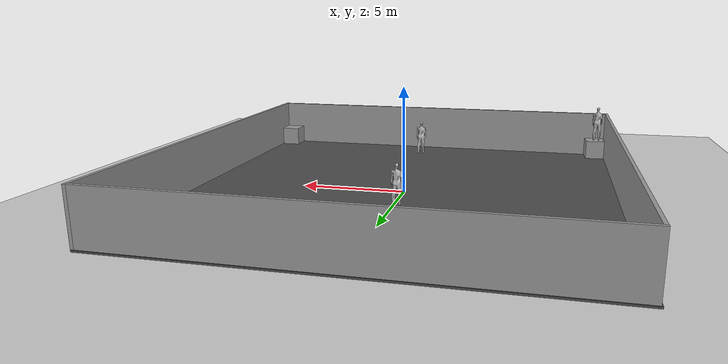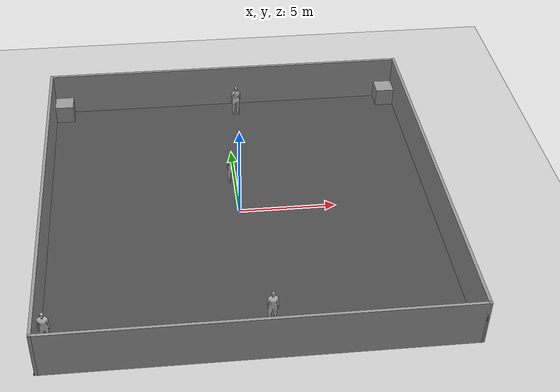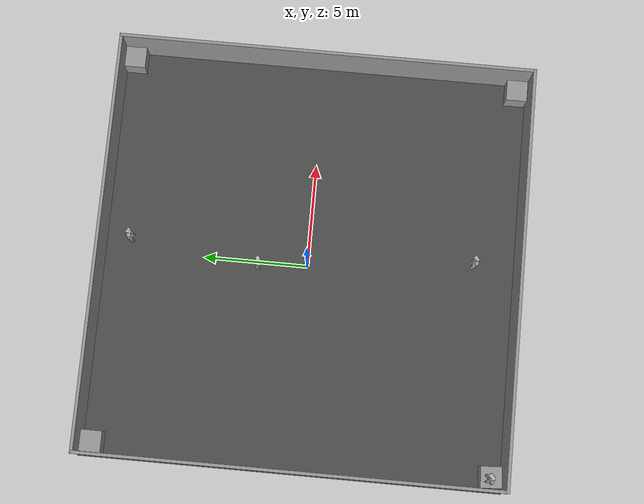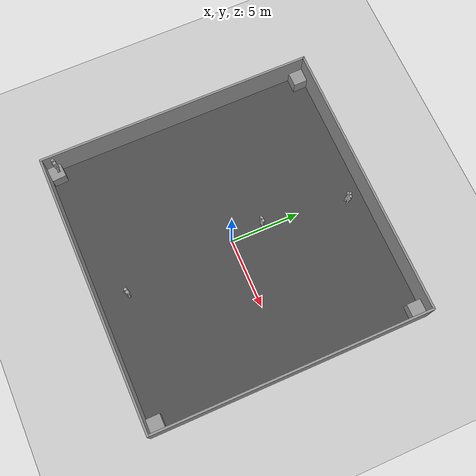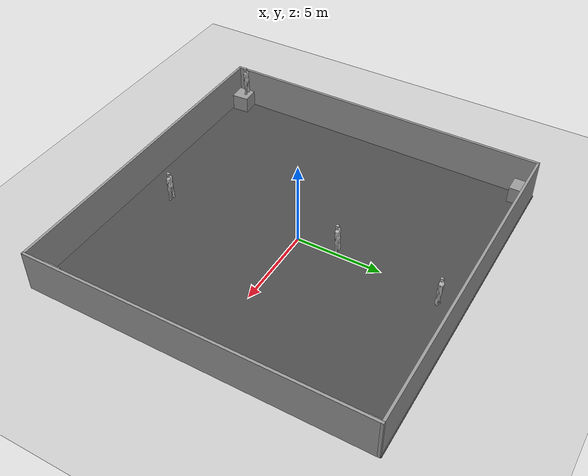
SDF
<sdf version="1.7">
 <world name="default">
  <plugin name="gazebo_ros_state" filename="libgazebo_ros_state.so">
   <ros><namespace>/demo</namespace><argument>model_states:=model_states_demo</argument></ros>
   <update_rate>1.0</update_rate>
  </plugin>
  <light name="sun" type="directional">
   <pose>0 0 10 0 -0 0</pose>
   <diffuse>0.8 0.8 0.8 1</diffuse>
   <specular>0.2 0.2 0.2 1</specular>
   <attenuation>
    <range>1000</range>
    <constant>0.9</constant>
    <linear>0.01</linear>
    <quadratic>0.001</quadratic>
   </attenuation>
   <direction>-0.5 0.1 -0.9</direction>
   <spot><inner_angle>0</inner_angle><outer_angle>0</outer_angle><falloff>0</falloff></spot>
  </light>
  <model name="ground_plane">
   <static>1</static>
   <link name="link">
    <collision name="collision">
     <geometry><plane><normal>0 0 1</normal><size>100 100</size></plane></geometry>
     <surface><friction><ode><mu>100</mu><mu2>50</mu2></ode></friction></surface>
    </collision>
    <visual name="visual">
     <cast_shadows>0</cast_shadows>
     <geometry><plane><normal>0 0 1</normal><size>100 100</size></plane></geometry>
     <material>
      <script><uri>file://media/materials/scripts/gazebo.material</uri><name>Gazebo/Grey</name></script>
     </material>
    </visual>
   </link>
  </model>
  <gravity>0 0 -9.8</gravity>
  <magnetic_field>6e-06 2.3e-05 -4.2e-05</magnetic_field>
  <atmosphere type="adiabatic"/>
  <physics type="ode">
   <max_step_size>0.001</max_step_size>
   <real_time_factor>1</real_time_factor>
   <real_time_update_rate>1000</real_time_update_rate>
  </physics>
  <scene><ambient>0.4 0.4 0.4 1</ambient><background>0.7 0.7 0.7 1</background><shadows>1</shadows></scene>
  <audio><device>default</device></audio>
  <spherical_coordinates>
   <surface_model>EARTH_WGS84</surface_model>
   <latitude_deg>0</latitude_deg>
   <longitude_deg>0</longitude_deg>
   <elevation>0</elevation>
   <heading_deg>0</heading_deg>
  </spherical_coordinates>
  <model name="asphalt_plane">
   <static>1</static>
   <link name="link">
    <collision name="collision"><geometry><box><size>20 20 0.1</size></box></geometry></collision>
    <visual name="visual">
     <cast_shadows>0</cast_shadows>
     <geometry><box><size>20 20 0.1</size></box></geometry>
     <material>
      <script>
       <uri>model://asphalt_plane/materials/scripts</uri>
       <uri>model://asphalt_plane/materials/textures</uri>
       <name>vrc/asphalt</name>
      </script>
     </material>
    </visual>
   </link>
   <pose>0.027118 -0.028406 0 0 -0 0</pose>
  </model>
  <model name="4Walls">
   <pose>0.075 -0.075 0 0 -0 0</pose>
   <link name="Wall_17">
    <collision name="Wall_17_Collision">
     <geometry><box><size>20 0.15 2.5</size></box></geometry>
     <pose>0 0 1.25 0 -0 0</pose>
    </collision>
    <visual name="Wall_17_Visual">
     <pose>0 0 1.25 0 -0 0</pose>
     <geometry><box><size>20 0.15 2.5</size></box></geometry>
     <material>
      <script><uri>file://media/materials/scripts/gazebo.material</uri><name>Gazebo/Grey</name></script>
      <ambient>1 1 1 1</ambient>
     </material>
     <meta><layer>0</layer></meta>
    </visual>
    <pose>0 -9.925 0 0 -0 0</pose>
   </link>
   <link name="Wall_19">
    <collision name="Wall_19_Collision">
     <geometry><box><size>20 0.15 2.5</size></box></geometry>
     <pose>0 0 1.25 0 -0 0</pose>
    </collision>
    <visual name="Wall_19_Visual">
     <pose>0 0 1.25 0 -0 0</pose>
     <geometry><box><size>20 0.15 2.5</size></box></geometry>
     <material>
      <script><uri>file://media/materials/scripts/gazebo.material</uri><name>Gazebo/Grey</name></script>
      <ambient>1 1 1 1</ambient>
     </material>
     <meta><layer>0</layer></meta>
    </visual>
    <pose>9.925 -0 0 0 -0 1.5708</pose>
   </link>
   <link name="Wall_21">
    <collision name="Wall_21_Collision">
     <geometry><box><size>20 0.15 2.5</size></box></geometry>
     <pose>0 0 1.25 0 -0 0</pose>
    </collision>
    <visual name="Wall_21_Visual">
     <pose>0 0 1.25 0 -0 0</pose>
     <geometry><box><size>20 0.15 2.5</size></box></geometry>
     <material>
      <script><uri>file://media/materials/scripts/gazebo.material</uri><name>Gazebo/Grey</name></script>
      <ambient>1 1 1 1</ambient>
     </material>
     <meta><layer>0</layer></meta>
    </visual>
    <pose>0 9.925 0 0 -0 3.14159</pose>
   </link>
   <link name="Wall_22">
    <collision name="Wall_22_Collision">
     <geometry><box><size>20 0.15 2.5</size></box></geometry>
     <pose>0 0 1.25 0 -0 0</pose>
    </collision>
    <visual name="Wall_22_Visual">
     <pose>0 0 1.25 0 -0 0</pose>
     <geometry><box><size>20 0.15 2.5</size></box></geometry>
     <material>
      <script><uri>file://media/materials/scripts/gazebo.material</uri><name>Gazebo/Grey</name></script>
      <ambient>1 1 1 1</ambient>
     </material>
     <meta><layer>0</layer></meta>
    </visual>
    <pose>-9.925 -0 0 0 -0 -1.5708</pose>
   </link>
   <static>1</static>
  </model>
  <model name="unit_box">
   <pose>9.4068 -9.39921 0.55 0 -0 3.2e-05</pose>
   <link name="link">
    <inertial>
     <mass>1</mass>
     <inertia>
      <ixx>0.166667</ixx>
      <ixy>0</ixy>
      <ixz>0</ixz>
      <iyy>0.166667</iyy>
      <iyz>0</iyz>
      <izz>0.166667</izz>
     </inertia>
    </inertial>
    <collision name="collision"><geometry><box><size>1 1 1</size></box></geometry></collision>
    <visual name="visual">
     <geometry><box><size>1 1 1</size></box></geometry>
     <material>
      <script><name>Gazebo/Grey</name><uri>file://media/materials/scripts/gazebo.material</uri></script>
     </material>
    </visual>
   </link>
  </model>
  <model name="unit_box_clone">
   <pose>9.42472 9.27477 0.55 0 -0 3.9e-05</pose>
   <link name="link">
    <inertial>
     <mass>1</mass>
     <inertia>
      <ixx>0.166667</ixx>
      <ixy>0</ixy>
      <ixz>0</ixz>
      <iyy>0.166667</iyy>
      <iyz>0</iyz>
      <izz>0.166667</izz>
     </inertia>
    </inertial>
    <collision name="collision"><geometry><box><size>1 1 1</size></box></geometry></collision>
    <visual name="visual">
     <geometry><box><size>1 1 1</size></box></geometry>
     <material>
      <script><name>Gazebo/Grey</name><uri>file://media/materials/scripts/gazebo.material</uri></script>
     </material>
    </visual>
   </link>
  </model>
  <model name="unit_box_clone_clone">
   <pose>-9.26193 9.27501 0.55 0 -0 1.6e-05</pose>
   <link name="link">
    <inertial>
     <mass>1</mass>
     <inertia>
      <ixx>0.166667</ixx>
      <ixy>0</ixy>
      <ixz>0</ixz>
      <iyy>0.166667</iyy>
      <iyz>0</iyz>
      <izz>0.166667</izz>
     </inertia>
    </inertial>
    <collision name="collision"><geometry><box><size>1 1 1</size></box></geometry></collision>
    <visual name="visual">
     <geometry><box><size>1 1 1</size></box></geometry>
     <material>
      <script><name>Gazebo/Grey</name><uri>file://media/materials/scripts/gazebo.material</uri></script>
     </material>
    </visual>
   </link>
  </model>
  <model name="unit_box_clone_clone_clone">
   <pose>-9.2339 -9.39314 0.549997 9e-06 -6e-06 0.065944</pose>
   <link name="link">
    <inertial>
     <mass>1</mass>
     <inertia>
      <ixx>0.166667</ixx>
      <ixy>0</ixy>
      <ixz>0</ixz>
      <iyy>0.166667</iyy>
      <iyz>0</iyz>
      <izz>0.166667</izz>
     </inertia>
    </inertial>
    <collision name="collision"><geometry><box><size>1 1 1</size></box></geometry></collision>
    <visual name="visual">
     <geometry><box><size>1 1 1</size></box></geometry>
     <material>
      <script><name>Gazebo/Grey</name><uri>file://media/materials/scripts/gazebo.material</uri></script>
     </material>
    </visual>
   </link>
  </model>
  <model name="person_standing">
   <link name="link">
    <inertial>
     <pose>0 -0.1 0.95 0 -0 0</pose>
     <mass>80</mass>
     <inertia><ixx>24.88</ixx><ixy>0</ixy><ixz>0</ixz><iyy>25.73</iyy><iyz>0</iyz><izz>2.48</izz></inertia>
    </inertial>
    <collision name="bottom">
     <pose>0 -0.1 0.01 0 -0 0</pose>
     <geometry><box><size>0.5 0.35 0.02</size></box></geometry>
    </collision>
    <collision name="person">
     <pose>0 0 0.02 0.04 -0 0</pose>
     <geometry><mesh><uri>model://person_standing/meshes/standing.dae</uri></mesh></geometry>
    </collision>
    <visual name="visual">
     <pose>0 0 0.02 0.04 -0 0</pose>
     <geometry><mesh><uri>model://person_standing/meshes/standing.dae</uri></mesh></geometry>
    </visual>
   </link>
   <pose>0.739954 -7.87442 0.05 1e-06 1e-06 0.001591</pose>
  </model>
  <model name="person_standing_0">
   <link name="link">
    <inertial>
     <pose>0 -0.1 0.95 0 -0 0</pose>
     <mass>80</mass>
     <inertia><ixx>24.88</ixx><ixy>0</ixy><ixz>0</ixz><iyy>25.73</iyy><iyz>0</iyz><izz>2.48</izz></inertia>
    </inertial>
    <collision name="bottom">
     <pose>0 -0.1 0.01 0 -0 0</pose>
     <geometry><box><size>0.5 0.35 0.02</size></box></geometry>
    </collision>
    <collision name="person">
     <pose>0 0 0.02 0.04 -0 0</pose>
     <geometry><mesh><uri>model://person_standing/meshes/standing.dae</uri></mesh></geometry>
    </collision>
    <visual name="visual">
     <pose>0 0 0.02 0.04 -0 0</pose>
     <geometry><mesh><uri>model://person_standing/meshes/standing.dae</uri></mesh></geometry>
    </visual>
   </link>
   <pose>0.592501 8.4663 0.05 0 1e-06 -3.14132</pose>
  </model>
  <model name="person_standing_1">
   <link name="link">
    <inertial>
     <pose>0 -0.1 0.95 0 -0 0</pose>
     <mass>80</mass>
     <inertia><ixx>24.88</ixx><ixy>0</ixy><ixz>0</ixz><iyy>25.73</iyy><iyz>0</iyz><izz>2.48</izz></inertia>
    </inertial>
    <collision name="bottom">
     <pose>0 -0.1 0.01 0 -0 0</pose>
     <geometry><box><size>0.5 0.35 0.02</size></box></geometry>
    </collision>
    <collision name="person">
     <pose>0 0 0.02 0.04 -0 0</pose>
     <geometry><mesh><uri>model://person_standing/meshes/standing.dae</uri></mesh></geometry>
    </collision>
    <visual name="visual">
     <pose>0 0 0.02 0.04 -0 0</pose>
     <geometry><mesh><uri>model://person_standing/meshes/standing.dae</uri></mesh></geometry>
    </visual>
   </link>
   <pose>-0.195801 2.40385 0.049999 -1e-06 -1e-06 0.001363</pose>
  </model>
  <model name="person_standing_2">
   <link name="link">
    <inertial>
     <pose>0 -0.1 0.95 0 -0 0</pose>
     <mass>80</mass>
     <inertia><ixx>24.88</ixx><ixy>0</ixy><ixz>0</ixz><iyy>25.73</iyy><iyz>0</iyz><izz>2.48</izz></inertia>
    </inertial>
    <collision name="bottom">
     <pose>0 -0.1 0.01 0 -0 0</pose>
     <geometry><box><size>0.5 0.35 0.02</size></box></geometry>
    </collision>
    <collision name="person">
     <pose>0 0 0.02 0.04 -0 0</pose>
     <geometry><mesh><uri>model://person_standing/meshes/standing.dae</uri></mesh></geometry>
    </collision>
    <visual name="visual">
     <pose>0 0 0.02 0.04 -0 0</pose>
     <geometry><mesh><uri>model://person_standing/meshes/standing.dae</uri></mesh></geometry>
    </visual>
   </link>
   <pose>-9.3223 -9.13119 1.04995 -2e-05 4e-06 -0.012453</pose>
  </model>
 </world>
</sdf>
